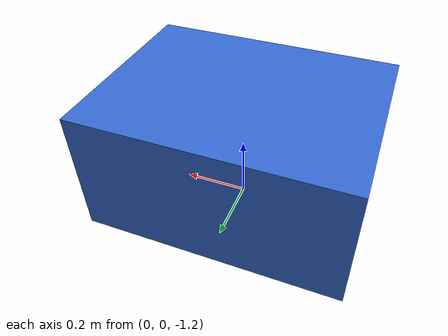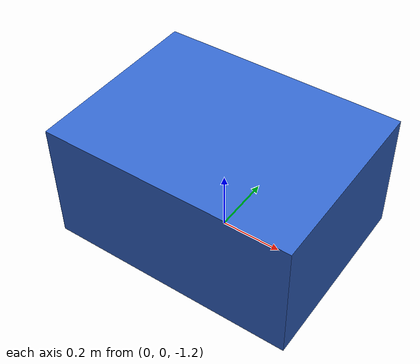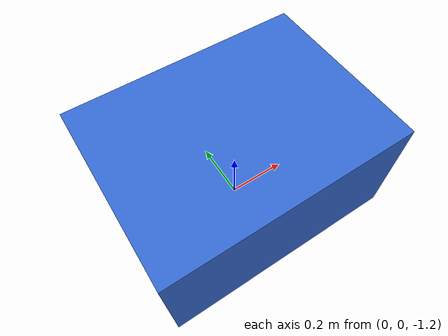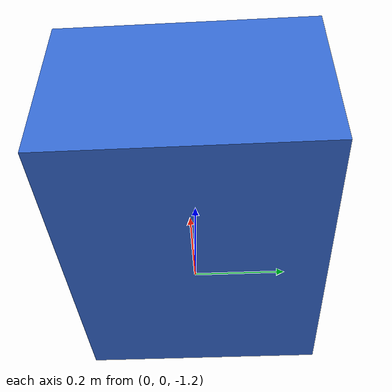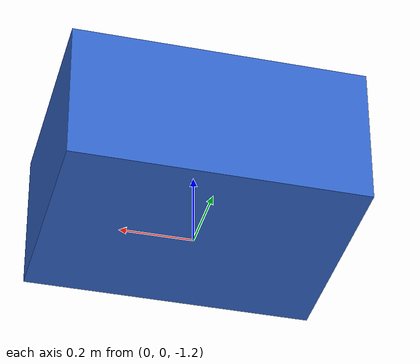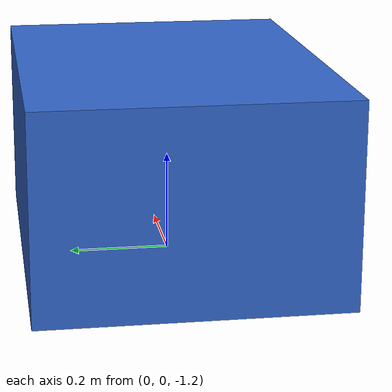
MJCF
<mujoco model="underwater_rov_base">
  <compiler inertiafromgeom="true"/>
  <option integrator="implicitfast"/>
  <worldbody>
    <body name="rov" pos="0 0 -1.0">
      <freejoint/>
      <geom name="rov_body"
            type="box"
            size="0.4 0.3 0.2"
            mass="150.0"
            rgba="0.2 0.4 0.8 1"
            fluidshape="ellipsoid"/>
    </body>
  </worldbody>
  <sensor>
    <framepos    name="pos" objtype="body" objname="rov"/>
    <framelinvel name="vel" objtype="body" objname="rov"/>
  </sensor>
</mujoco>
